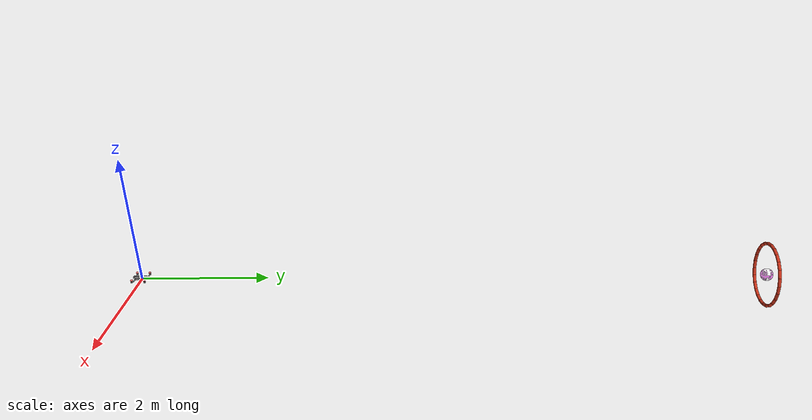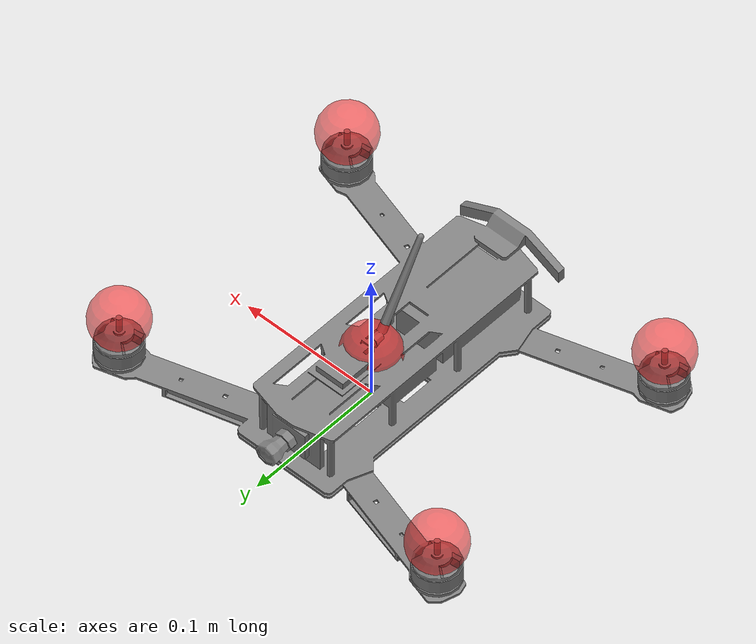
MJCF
<mujoco model="Hoopflyt">
  <option timestep="0.002" gravity="0 0 -9.81" density="0.5" viscosity="0.00002"/>

  <size njmax="50" nconmax="10" nstack="2000"/>

  <visual>
    <global offwidth="1280" offheight="720"/>
    <rgba haze=".3 .3 .3 1"/>
  </visual>

  <default>

  </default>

  <asset>
    <texture type="skybox" builtin="gradient" rgb1="0.6 0.6 0.6" rgb2="0 0 0" width="512" height="512"/>

    <texture name="texplane" type="2d" builtin="checker" rgb1=".25 .25 .25" rgb2=".3 .3 .3" width="512" height="512" mark="cross" markrgb=".8 .8 .8"/>

    <material name="matplane" reflectance="0.3" texture="texplane" texrepeat="1 1" texuniform="true"/>

    <mesh file="drone.stl" scale="0.037057830597539 0.037057830597539 0.037057830597539"/>
  </asset>

  <worldbody>

    <light mode = "fixed" castshadow="false" directional="false" diffuse="1 1 1" specular=".2 .2 .2" pos="0 0 5" dir="0 0 -1"/>

    <body name="drone" pos="0 0 0">
      <joint type = "ball" pos = "0 0 0"/>
      <geom name="drone" type="mesh" mesh="drone" mass="0.5"/>

      <body pos="0.00031647387330298305 0.08523301037433968 0.021350498520466117" axisangle="1 0 0 90">
          <camera name="drone" mode="fixed" fovy="130" axisangle="1 0 0 45"/>
      </body>
      <site name="drone_fl" type="sphere" size="0.02" pos="0.12818785355486506 0.08212237607398228 0.037057830597539" rgba="1 0 0 0.5"/>
      <site name="drone_fr" type="sphere" size="0.02" pos="-0.12818785355486506 0.08212237607398228 0.037057830597539" rgba="1 0 0 0.5"/>
      <site name="drone_br" type="sphere" size="0.02" pos="-0.12818785355486506 -0.11824449644893341 0.037057830597539" rgba="1 0 0 0.5"/>
      <site name="drone_bl" type="sphere" size="0.02" pos="0.12818785355486506 -0.11824449644893341 0.037057830597539" rgba="1 0 0 0.5"/>
      <site name="drone_sensors" type="sphere" size="0.02" rgba="1 0 0 0.5" pos="0 0 0.037057830597539"/>
    </body>

    <body name="target" pos="0 10 0" axisangle="1 0 0 90" mocap="true">
      <geom name="target" type="sphere" size="0.1" rgba="1 0 1 0.5" contype="0" conaffinity="0" group="1"/>
    </body>

    <body name="estimatedpos" pos="0 10 0" axisangle="1 0 0 90" mocap="true">
      <geom name="estimatedpos" type="sphere" size="0.1" rgba="0 1 1 0.25" contype="0" conaffinity="0" group="1"/>
    </body>

    <body name="hooppos" pos="0 10 0" mocap="true">
      <geom name="hooppos" type="sphere" size="0.1" rgba="1 1 1 0.5" contype="0" conaffinity="0" group="1"/>
    </body>

    <body name="hoop" pos="0 10 0" axisangle="1 0 0 90" mocap="true">
<geom type="capsule" pos="0.5 0.0 0" axisangle="0.5 0.0 0 90" size="0.0254 0.062918" rgba=".8 .2 .1 1"/>
        <geom type="capsule" pos="0.4842487040728958 0.12451181712480552 0" axisangle="0.4842487040728958 0.12451181712480552 0 90" size="0.0254 0.062918" rgba=".8 .2 .1 1"/>
        <geom type="capsule" pos="0.43798722958511593 0.24117874433779388 0" axisangle="0.43798722958511593 0.24117874433779388 0 90" size="0.0254 0.062918" rgba=".8 .2 .1 1"/>
        <geom type="capsule" pos="0.3641302892353853 0.3426501604572142 0" axisangle="0.3641302892353853 0.3426501604572142 0 90" size="0.0254 0.062918" rgba=".8 .2 .1 1"/>
        <geom type="capsule" pos="0.26733125311858025 0.4225328402693092 0" axisangle="0.26733125311858025 0.4225328402693092 0 90" size="0.0254 0.062918" rgba=".8 .2 .1 1"/>
        <geom type="capsule" pos="0.15368896228803766 0.4757937608573973 0" axisangle="0.15368896228803766 0.4757937608573973 0 90" size="0.0254 0.062918" rgba=".8 .2 .1 1"/>
        <geom type="capsule" pos="0.030363470154581424 0.4990772081353464 0" axisangle="0.030363470154581424 0.4990772081353464 0 90" size="0.0254 0.062918" rgba=".8 .2 .1 1"/>
        <geom type="capsule" pos="-0.09487507799398935 0.4909162042300442 0" axisangle="-0.09487507799398935 0.4909162042300442 0 90" size="0.0254 0.062918" rgba=".8 .2 .1 1"/>
        <geom type="capsule" pos="-0.21413600442419836 0.45182493469178936 0" axisangle="-0.21413600442419836 0.45182493469178936 0 90" size="0.0254 0.062918" rgba=".8 .2 .1 1"/>
        <geom type="capsule" pos="-0.31990525255707447 0.3842663521392348 0" axisangle="-0.31990525255707447 0.3842663521392348 0 90" size="0.0254 0.062918" rgba=".8 .2 .1 1"/>
        <geom type="capsule" pos="-0.40551881148330454 0.29249699747718455 0" axisangle="-0.40551881148330454 0.29249699747718455 0 90" size="0.0254 0.062918" rgba=".8 .2 .1 1"/>
        <geom type="capsule" pos="-0.46558258319481005 0.18229881575492413 0" axisangle="-0.46558258319481005 0.18229881575492413 0 90" size="0.0254 0.062918" rgba=".8 .2 .1 1"/>
        <geom type="capsule" pos="-0.49631223872068736 0.06061486365619764 0" axisangle="-0.49631223872068736 0.06061486365619764 0 90" size="0.0254 0.062918" rgba=".8 .2 .1 1"/>
        <geom type="capsule" pos="-0.4957716504692321 -0.0648881390626482 0" axisangle="-0.4957716504692321 -0.0648881390626482 0 90" size="0.0254 0.062918" rgba=".8 .2 .1 1"/>
        <geom type="capsule" pos="-0.46399487830253777 -0.1863028526593546 0" axisangle="-0.46399487830253777 -0.1863028526593546 0 90" size="0.0254 0.062918" rgba=".8 .2 .1 1"/>
        <geom type="capsule" pos="-0.40298402358862756 -0.29597952079885603 0" axisangle="-0.40298402358862756 -0.29597952079885603 0 90" size="0.0254 0.062918" rgba=".8 .2 .1 1"/>
        <geom type="capsule" pos="-0.3165830864369588 -0.38700794485649653 0" axisangle="-0.3165830864369588 -0.38700794485649653 0 90" size="0.0254 0.062918" rgba=".8 .2 .1 1"/>
        <geom type="capsule" pos="-0.21023577376535182 -0.4536528622518366 0" axisangle="-0.21023577376535182 -0.4536528622518366 0 90" size="0.0254 0.062918" rgba=".8 .2 .1 1"/>
        <geom type="capsule" pos="-0.09064251754557764 -0.49171529772115047 0" axisangle="-0.09064251754557764 -0.49171529772115047 0 90" size="0.0254 0.062918" rgba=".8 .2 .1 1"/>
        <geom type="capsule" pos="0.03466168714394906 -0.49879712052530434 0" axisangle="0.03466168714394906 -0.49879712052530434 0 90" size="0.0254 0.062918" rgba=".8 .2 .1 1"/>
        <geom type="capsule" pos="0.15778202586732756 -0.47445213911753203 0" axisangle="0.15778202586732756 -0.47445213911753203 0 90" size="0.0254 0.062918" rgba=".8 .2 .1 1"/>
        <geom type="capsule" pos="0.2709612790650486 -0.42021421352380844 0" axisangle="0.2709612790650486 -0.42021421352380844 0 90" size="0.0254 0.062918" rgba=".8 .2 .1 1"/>
        <geom type="capsule" pos="0.3670685670974089 -0.3395006142101292 0" axisangle="0.3670685670974089 -0.3395006142101292 0 90" size="0.0254 0.062918" rgba=".8 .2 .1 1"/>
        <geom type="capsule" pos="0.4400486326262119 -0.23739671632902 0" axisangle="0.4400486326262119 -0.23739671632902 0 90" size="0.0254 0.062918" rgba=".8 .2 .1 1"/>
        <geom type="capsule" pos="0.4853033532157623 -0.12033559472382672 0" axisangle="0.4853033532157623 -0.12033559472382672 0 90" size="0.0254 0.062918" rgba=".8 .2 .1 1"/>
    </body>

  </worldbody>

  <sensor>
    <accelerometer name="drone_acc" site="drone_sensors"/>
    <gyro name="drone_gyro" site="drone_sensors"/>
    <force name="drone_force" site="drone_sensors"/>
    <framelinacc name="drone_linacc" objtype="site" objname="drone_sensors"/>
    <framelinvel name="drone_linvel" objtype="site" objname="drone_sensors"/>
    <framepos    name="drone_pos" objtype="site" objname="drone_sensors"/>
    <framequat   name="drone_quat"  objtype="site" objname="drone_sensors"/>
  </sensor>

  <actuator>
    <motor name="drone_fl" site="drone_fl" gear="0 0 25 0 0  1" ctrllimited="true" ctrlrange="0 1"/>
    <motor name="drone_fr" site="drone_fr" gear="0 0 25 0 0 -1" ctrllimited="true" ctrlrange="0 1"/>
    <motor name="drone_br" site="drone_br" gear="0 0 25 0 0  1" ctrllimited="true" ctrlrange="0 1"/>
    <motor name="drone_bl" site="drone_bl" gear="0 0 25 0 0 -1" ctrllimited="true" ctrlrange="0 1"/>
  </actuator>
</mujoco>
